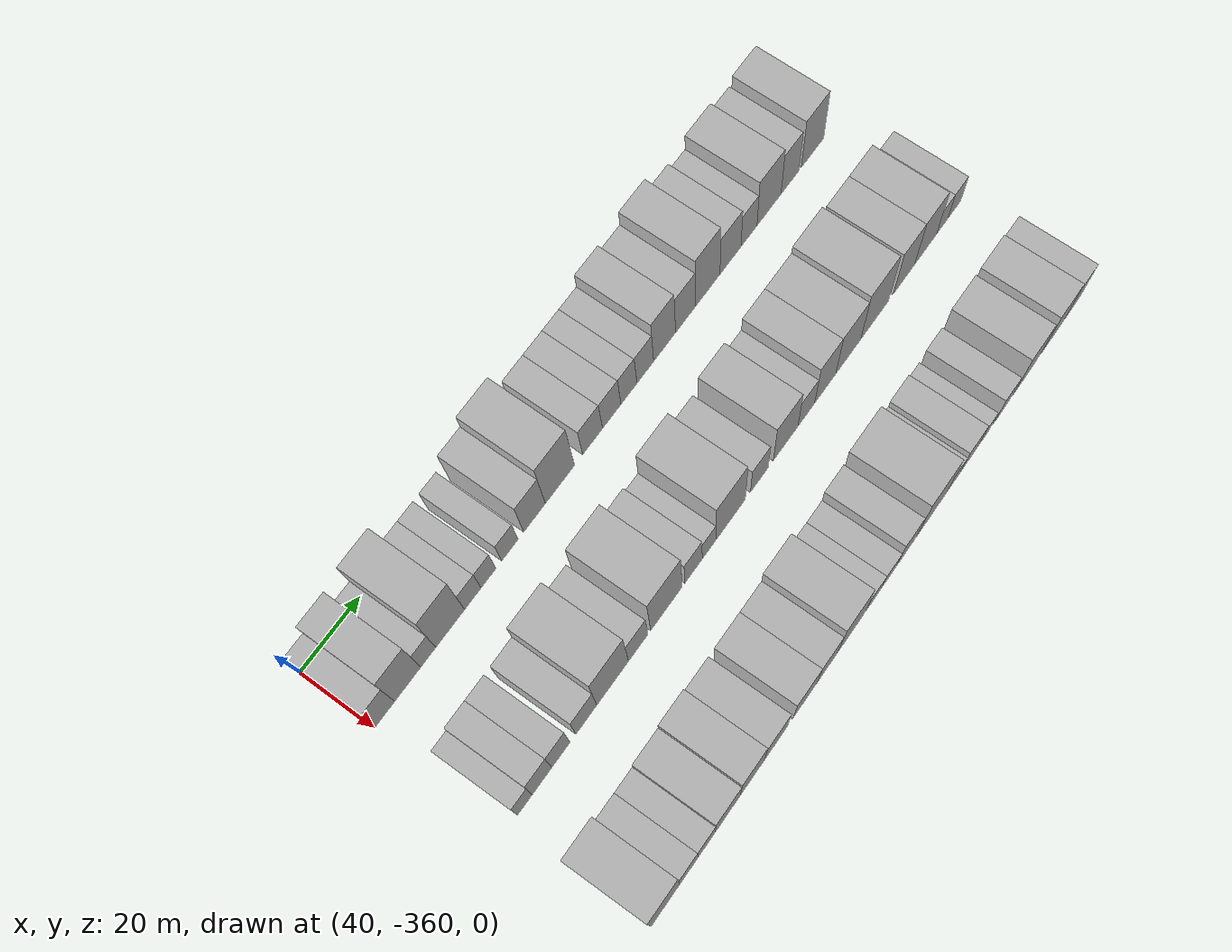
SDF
<sdf version="1.6">
 <world name="default">
  <model name="building_1">
   <static>1</static>
   <pose>50.0000 -356.6200 0 0.000000 0.000000 0.000000</pose>
   <link name="link">
    <pose>0 0 7.50 0 0 0</pose>
    <collision name="collision"><geometry><box><size>20.0000 6.7601 15.0000</size></box></geometry></collision>
    <visual name="visual">
     <cast_shadows>0</cast_shadows>
     <geometry><box><size>20.0000 6.7601 15.0000</size></box></geometry>
     <material>
      <script>
       <uri>model://HANNAS_wall/materials/scripts</uri>
       <uri>model://HANNAS_wall/materials/textures</uri>
       <name>vrc/HANNAS_wall</name>
      </script>
     </material>
    </visual>
   </link>
  </model>
  <model name="building_2">
   <static>1</static>
   <pose>50.0000 -348.8733 0 0.000000 0.000000 0.000000</pose>
   <link name="link">
    <pose>0 0 10.50 0 0 0</pose>
    <collision name="collision"><geometry><box><size>20.0000 8.7333 21.0000</size></box></geometry></collision>
    <visual name="visual">
     <cast_shadows>0</cast_shadows>
     <geometry><box><size>20.0000 8.7333 21.0000</size></box></geometry>
     <material>
      <script>
       <uri>model://HANNAS_wall/materials/scripts</uri>
       <uri>model://HANNAS_wall/materials/textures</uri>
       <name>vrc/HANNAS_wall</name>
      </script>
     </material>
    </visual>
   </link>
  </model>
  <model name="building_3">
   <static>1</static>
   <pose>50.0000 -341.9335 0 0.000000 0.000000 0.000000</pose>
   <link name="link">
    <pose>0 0 6.00 0 0 0</pose>
    <collision name="collision"><geometry><box><size>20.0000 5.1462 12.0000</size></box></geometry></collision>
    <visual name="visual">
     <cast_shadows>0</cast_shadows>
     <geometry><box><size>20.0000 5.1462 12.0000</size></box></geometry>
     <material>
      <script>
       <uri>model://HANNAS_wall/materials/scripts</uri>
       <uri>model://HANNAS_wall/materials/textures</uri>
       <name>vrc/HANNAS_wall</name>
      </script>
     </material>
    </visual>
   </link>
  </model>
  <model name="building_4">
   <static>1</static>
   <pose>50.0000 -334.3905 0 0.000000 0.000000 0.000000</pose>
   <link name="link">
    <pose>0 0 12.00 0 0 0</pose>
    <collision name="collision"><geometry><box><size>20.0000 9.9397 24.0000</size></box></geometry></collision>
    <visual name="visual">
     <cast_shadows>0</cast_shadows>
     <geometry><box><size>20.0000 9.9397 24.0000</size></box></geometry>
     <material>
      <script>
       <uri>model://HANNAS_wall/materials/scripts</uri>
       <uri>model://HANNAS_wall/materials/textures</uri>
       <name>vrc/HANNAS_wall</name>
      </script>
     </material>
    </visual>
   </link>
  </model>
  <model name="building_5">
   <static>1</static>
   <pose>50.0000 -326.5661 0 0.000000 0.000000 0.000000</pose>
   <link name="link">
    <pose>0 0 6.00 0 0 0</pose>
    <collision name="collision"><geometry><box><size>20.0000 5.7091 12.0000</size></box></geometry></collision>
    <visual name="visual">
     <cast_shadows>0</cast_shadows>
     <geometry><box><size>20.0000 5.7091 12.0000</size></box></geometry>
     <material>
      <script>
       <uri>model://HANNAS_wall/materials/scripts</uri>
       <uri>model://HANNAS_wall/materials/textures</uri>
       <name>vrc/HANNAS_wall</name>
      </script>
     </material>
    </visual>
   </link>
  </model>
  <model name="building_6">
   <static>1</static>
   <pose>50.0000 -321.0969 0 0.000000 0.000000 0.000000</pose>
   <link name="link">
    <pose>0 0 6.00 0 0 0</pose>
    <collision name="collision"><geometry><box><size>20.0000 5.2293 12.0000</size></box></geometry></collision>
    <visual name="visual">
     <cast_shadows>0</cast_shadows>
     <geometry><box><size>20.0000 5.2293 12.0000</size></box></geometry>
     <material>
      <script>
       <uri>model://HANNAS_wall/materials/scripts</uri>
       <uri>model://HANNAS_wall/materials/textures</uri>
       <name>vrc/HANNAS_wall</name>
      </script>
     </material>
    </visual>
   </link>
  </model>
  <model name="building_7">
   <static>1</static>
   <pose>50.0000 -313.5679 0 0.000000 0.000000 0.000000</pose>
   <link name="link">
    <pose>0 0 6.00 0 0 0</pose>
    <collision name="collision"><geometry><box><size>20.0000 5.8287 12.0000</size></box></geometry></collision>
    <visual name="visual">
     <cast_shadows>0</cast_shadows>
     <geometry><box><size>20.0000 5.8287 12.0000</size></box></geometry>
     <material>
      <script>
       <uri>model://HANNAS_wall/materials/scripts</uri>
       <uri>model://HANNAS_wall/materials/textures</uri>
       <name>vrc/HANNAS_wall</name>
      </script>
     </material>
    </visual>
   </link>
  </model>
  <model name="building_8">
   <static>1</static>
   <pose>50.0000 -304.7530 0 0.000000 0.000000 0.000000</pose>
   <link name="link">
    <pose>0 0 9.00 0 0 0</pose>
    <collision name="collision"><geometry><box><size>20.0000 7.8011 18.0000</size></box></geometry></collision>
    <visual name="visual">
     <cast_shadows>0</cast_shadows>
     <geometry><box><size>20.0000 7.8011 18.0000</size></box></geometry>
     <material>
      <script>
       <uri>model://HANNAS_wall/materials/scripts</uri>
       <uri>model://HANNAS_wall/materials/textures</uri>
       <name>vrc/HANNAS_wall</name>
      </script>
     </material>
    </visual>
   </link>
  </model>
  <model name="building_9">
   <static>1</static>
   <pose>50.0000 -295.5351 0 0.000000 0.000000 0.000000</pose>
   <link name="link">
    <pose>0 0 12.00 0 0 0</pose>
    <collision name="collision"><geometry><box><size>20.0000 10.6348 24.0000</size></box></geometry></collision>
    <visual name="visual">
     <cast_shadows>0</cast_shadows>
     <geometry><box><size>20.0000 10.6348 24.0000</size></box></geometry>
     <material>
      <script>
       <uri>model://HANNAS_wall/materials/scripts</uri>
       <uri>model://HANNAS_wall/materials/textures</uri>
       <name>vrc/HANNAS_wall</name>
      </script>
     </material>
    </visual>
   </link>
  </model>
  <model name="building_10">
   <static>1</static>
   <pose>50.0000 -283.5239 0 0.000000 0.000000 0.000000</pose>
   <link name="link">
    <pose>0 0 7.50 0 0 0</pose>
    <collision name="collision"><geometry><box><size>20.0000 7.3876 15.0000</size></box></geometry></collision>
    <visual name="visual">
     <cast_shadows>0</cast_shadows>
     <geometry><box><size>20.0000 7.3876 15.0000</size></box></geometry>
     <material>
      <script>
       <uri>model://HANNAS_wall/materials/scripts</uri>
       <uri>model://HANNAS_wall/materials/textures</uri>
       <name>vrc/HANNAS_wall</name>
      </script>
     </material>
    </visual>
   </link>
  </model>
  <model name="building_11">
   <static>1</static>
   <pose>50.0000 -276.3999 0 0.000000 0.000000 0.000000</pose>
   <link name="link">
    <pose>0 0 7.50 0 0 0</pose>
    <collision name="collision"><geometry><box><size>20.0000 6.8602 15.0000</size></box></geometry></collision>
    <visual name="visual">
     <cast_shadows>0</cast_shadows>
     <geometry><box><size>20.0000 6.8602 15.0000</size></box></geometry>
     <material>
      <script>
       <uri>model://HANNAS_wall/materials/scripts</uri>
       <uri>model://HANNAS_wall/materials/textures</uri>
       <name>vrc/HANNAS_wall</name>
      </script>
     </material>
    </visual>
   </link>
  </model>
  <model name="building_12">
   <static>1</static>
   <pose>50.0000 -269.9434 0 0.000000 0.000000 0.000000</pose>
   <link name="link">
    <pose>0 0 7.50 0 0 0</pose>
    <collision name="collision"><geometry><box><size>20.0000 6.0530 15.0000</size></box></geometry></collision>
    <visual name="visual">
     <cast_shadows>0</cast_shadows>
     <geometry><box><size>20.0000 6.0530 15.0000</size></box></geometry>
     <material>
      <script>
       <uri>model://HANNAS_wall/materials/scripts</uri>
       <uri>model://HANNAS_wall/materials/textures</uri>
       <name>vrc/HANNAS_wall</name>
      </script>
     </material>
    </visual>
   </link>
  </model>
  <model name="building_13">
   <static>1</static>
   <pose>50.0000 -263.7187 0 0.000000 0.000000 0.000000</pose>
   <link name="link">
    <pose>0 0 7.50 0 0 0</pose>
    <collision name="collision"><geometry><box><size>20.0000 6.3963 15.0000</size></box></geometry></collision>
    <visual name="visual">
     <cast_shadows>0</cast_shadows>
     <geometry><box><size>20.0000 6.3963 15.0000</size></box></geometry>
     <material>
      <script>
       <uri>model://HANNAS_wall/materials/scripts</uri>
       <uri>model://HANNAS_wall/materials/textures</uri>
       <name>vrc/HANNAS_wall</name>
      </script>
     </material>
    </visual>
   </link>
  </model>
  <model name="building_14">
   <static>1</static>
   <pose>50.0000 -256.2861 0 0.000000 0.000000 0.000000</pose>
   <link name="link">
    <pose>0 0 10.50 0 0 0</pose>
    <collision name="collision"><geometry><box><size>20.0000 8.4690 21.0000</size></box></geometry></collision>
    <visual name="visual">
     <cast_shadows>0</cast_shadows>
     <geometry><box><size>20.0000 8.4690 21.0000</size></box></geometry>
     <material>
      <script>
       <uri>model://HANNAS_wall/materials/scripts</uri>
       <uri>model://HANNAS_wall/materials/textures</uri>
       <name>vrc/HANNAS_wall</name>
      </script>
     </material>
    </visual>
   </link>
  </model>
  <model name="building_15">
   <static>1</static>
   <pose>50.0000 -248.1582 0 0.000000 0.000000 0.000000</pose>
   <link name="link">
    <pose>0 0 9.00 0 0 0</pose>
    <collision name="collision"><geometry><box><size>20.0000 7.7868 18.0000</size></box></geometry></collision>
    <visual name="visual">
     <cast_shadows>0</cast_shadows>
     <geometry><box><size>20.0000 7.7868 18.0000</size></box></geometry>
     <material>
      <script>
       <uri>model://HANNAS_wall/materials/scripts</uri>
       <uri>model://HANNAS_wall/materials/textures</uri>
       <name>vrc/HANNAS_wall</name>
      </script>
     </material>
    </visual>
   </link>
  </model>
  <model name="building_16">
   <static>1</static>
   <pose>50.0000 -239.4405 0 0.000000 0.000000 0.000000</pose>
   <link name="link">
    <pose>0 0 12.00 0 0 0</pose>
    <collision name="collision"><geometry><box><size>20.0000 9.6487 24.0000</size></box></geometry></collision>
    <visual name="visual">
     <cast_shadows>0</cast_shadows>
     <geometry><box><size>20.0000 9.6487 24.0000</size></box></geometry>
     <material>
      <script>
       <uri>model://HANNAS_wall/materials/scripts</uri>
       <uri>model://HANNAS_wall/materials/textures</uri>
       <name>vrc/HANNAS_wall</name>
      </script>
     </material>
    </visual>
   </link>
  </model>
  <model name="building_17">
   <static>1</static>
   <pose>50.0000 -230.4043 0 0.000000 0.000000 0.000000</pose>
   <link name="link">
    <pose>0 0 9.00 0 0 0</pose>
    <collision name="collision"><geometry><box><size>20.0000 8.4235 18.0000</size></box></geometry></collision>
    <visual name="visual">
     <cast_shadows>0</cast_shadows>
     <geometry><box><size>20.0000 8.4235 18.0000</size></box></geometry>
     <material>
      <script>
       <uri>model://HANNAS_wall/materials/scripts</uri>
       <uri>model://HANNAS_wall/materials/textures</uri>
       <name>vrc/HANNAS_wall</name>
      </script>
     </material>
    </visual>
   </link>
  </model>
  <model name="building_18">
   <static>1</static>
   <pose>50.0000 -222.9720 0 0.000000 0.000000 0.000000</pose>
   <link name="link">
    <pose>0 0 7.50 0 0 0</pose>
    <collision name="collision"><geometry><box><size>20.0000 6.4411 15.0000</size></box></geometry></collision>
    <visual name="visual">
     <cast_shadows>0</cast_shadows>
     <geometry><box><size>20.0000 6.4411 15.0000</size></box></geometry>
     <material>
      <script>
       <uri>model://HANNAS_wall/materials/scripts</uri>
       <uri>model://HANNAS_wall/materials/textures</uri>
       <name>vrc/HANNAS_wall</name>
      </script>
     </material>
    </visual>
   </link>
  </model>
  <model name="building_19">
   <static>1</static>
   <pose>50.0000 -214.8241 0 0.000000 0.000000 0.000000</pose>
   <link name="link">
    <pose>0 0 10.50 0 0 0</pose>
    <collision name="collision"><geometry><box><size>20.0000 9.8547 21.0000</size></box></geometry></collision>
    <visual name="visual">
     <cast_shadows>0</cast_shadows>
     <geometry><box><size>20.0000 9.8547 21.0000</size></box></geometry>
     <material>
      <script>
       <uri>model://HANNAS_wall/materials/scripts</uri>
       <uri>model://HANNAS_wall/materials/textures</uri>
       <name>vrc/HANNAS_wall</name>
      </script>
     </material>
    </visual>
   </link>
  </model>
  <model name="building_20">
   <static>1</static>
   <pose>50.0000 -206.2114 0 0.000000 0.000000 0.000000</pose>
   <link name="link">
    <pose>0 0 9.00 0 0 0</pose>
    <collision name="collision"><geometry><box><size>20.0000 7.3707 18.0000</size></box></geometry></collision>
    <visual name="visual">
     <cast_shadows>0</cast_shadows>
     <geometry><box><size>20.0000 7.3707 18.0000</size></box></geometry>
     <material>
      <script>
       <uri>model://HANNAS_wall/materials/scripts</uri>
       <uri>model://HANNAS_wall/materials/textures</uri>
       <name>vrc/HANNAS_wall</name>
      </script>
     </material>
    </visual>
   </link>
  </model>
  <model name="building_21">
   <static>1</static>
   <pose>50.0000 -196.8232 0 0.000000 0.000000 0.000000</pose>
   <link name="link">
    <pose>0 0 10.50 0 0 0</pose>
    <collision name="collision"><geometry><box><size>20.0000 9.4058 21.0000</size></box></geometry></collision>
    <visual name="visual">
     <cast_shadows>0</cast_shadows>
     <geometry><box><size>20.0000 9.4058 21.0000</size></box></geometry>
     <material>
      <script>
       <uri>model://HANNAS_wall/materials/scripts</uri>
       <uri>model://HANNAS_wall/materials/textures</uri>
       <name>vrc/HANNAS_wall</name>
      </script>
     </material>
    </visual>
   </link>
  </model>
  <model name="building_84">
   <static>1</static>
   <pose>85.0000 -354.4987 0 0.000000 0.000000 0.000000</pose>
   <link name="link">
    <pose>0 0 6.00 0 0 0</pose>
    <collision name="collision"><geometry><box><size>20.0000 5.0026 12.0000</size></box></geometry></collision>
    <visual name="visual">
     <cast_shadows>0</cast_shadows>
     <geometry><box><size>20.0000 5.0026 12.0000</size></box></geometry>
     <material>
      <script>
       <uri>model://HANNAS_wall/materials/scripts</uri>
       <uri>model://HANNAS_wall/materials/textures</uri>
       <name>vrc/HANNAS_wall</name>
      </script>
     </material>
    </visual>
   </link>
  </model>
  <model name="building_85">
   <static>1</static>
   <pose>85.0000 -348.6462 0 0.000000 0.000000 0.000000</pose>
   <link name="link">
    <pose>0 0 7.50 0 0 0</pose>
    <collision name="collision"><geometry><box><size>20.0000 6.7025 15.0000</size></box></geometry></collision>
    <visual name="visual">
     <cast_shadows>0</cast_shadows>
     <geometry><box><size>20.0000 6.7025 15.0000</size></box></geometry>
     <material>
      <script>
       <uri>model://HANNAS_wall/materials/scripts</uri>
       <uri>model://HANNAS_wall/materials/textures</uri>
       <name>vrc/HANNAS_wall</name>
      </script>
     </material>
    </visual>
   </link>
  </model>
  <model name="building_86">
   <static>1</static>
   <pose>85.0000 -342.1500 0 0.000000 0.000000 0.000000</pose>
   <link name="link">
    <pose>0 0 7.50 0 0 0</pose>
    <collision name="collision"><geometry><box><size>20.0000 6.2898 15.0000</size></box></geometry></collision>
    <visual name="visual">
     <cast_shadows>0</cast_shadows>
     <geometry><box><size>20.0000 6.2898 15.0000</size></box></geometry>
     <material>
      <script>
       <uri>model://HANNAS_wall/materials/scripts</uri>
       <uri>model://HANNAS_wall/materials/textures</uri>
       <name>vrc/HANNAS_wall</name>
      </script>
     </material>
    </visual>
   </link>
  </model>
  <model name="building_87">
   <static>1</static>
   <pose>85.0000 -333.3445 0 0.000000 0.000000 0.000000</pose>
   <link name="link">
    <pose>0 0 7.50 0 0 0</pose>
    <collision name="collision"><geometry><box><size>20.0000 7.3213 15.0000</size></box></geometry></collision>
    <visual name="visual">
     <cast_shadows>0</cast_shadows>
     <geometry><box><size>20.0000 7.3213 15.0000</size></box></geometry>
     <material>
      <script>
       <uri>model://HANNAS_wall/materials/scripts</uri>
       <uri>model://HANNAS_wall/materials/textures</uri>
       <name>vrc/HANNAS_wall</name>
      </script>
     </material>
    </visual>
   </link>
  </model>
  <model name="building_88">
   <static>1</static>
   <pose>85.0000 -324.0532 0 0.000000 0.000000 0.000000</pose>
   <link name="link">
    <pose>0 0 12.00 0 0 0</pose>
    <collision name="collision"><geometry><box><size>20.0000 11.2613 24.0000</size></box></geometry></collision>
    <visual name="visual">
     <cast_shadows>0</cast_shadows>
     <geometry><box><size>20.0000 11.2613 24.0000</size></box></geometry>
     <material>
      <script>
       <uri>model://HANNAS_wall/materials/scripts</uri>
       <uri>model://HANNAS_wall/materials/textures</uri>
       <name>vrc/HANNAS_wall</name>
      </script>
     </material>
    </visual>
   </link>
  </model>
  <model name="building_89">
   <static>1</static>
   <pose>85.0000 -314.9247 0 0.000000 0.000000 0.000000</pose>
   <link name="link">
    <pose>0 0 7.50 0 0 0</pose>
    <collision name="collision"><geometry><box><size>20.0000 6.9957 15.0000</size></box></geometry></collision>
    <visual name="visual">
     <cast_shadows>0</cast_shadows>
     <geometry><box><size>20.0000 6.9957 15.0000</size></box></geometry>
     <material>
      <script>
       <uri>model://HANNAS_wall/materials/scripts</uri>
       <uri>model://HANNAS_wall/materials/textures</uri>
       <name>vrc/HANNAS_wall</name>
      </script>
     </material>
    </visual>
   </link>
  </model>
  <model name="building_90">
   <static>1</static>
   <pose>85.0000 -304.6730 0 0.000000 0.000000 0.000000</pose>
   <link name="link">
    <pose>0 0 12.00 0 0 0</pose>
    <collision name="collision"><geometry><box><size>20.0000 11.5077 24.0000</size></box></geometry></collision>
    <visual name="visual">
     <cast_shadows>0</cast_shadows>
     <geometry><box><size>20.0000 11.5077 24.0000</size></box></geometry>
     <material>
      <script>
       <uri>model://HANNAS_wall/materials/scripts</uri>
       <uri>model://HANNAS_wall/materials/textures</uri>
       <name>vrc/HANNAS_wall</name>
      </script>
     </material>
    </visual>
   </link>
  </model>
  <model name="building_91">
   <static>1</static>
   <pose>85.0000 -294.7098 0 0.000000 0.000000 0.000000</pose>
   <link name="link">
    <pose>0 0 7.50 0 0 0</pose>
    <collision name="collision"><geometry><box><size>20.0000 6.4189 15.0000</size></box></geometry></collision>
    <visual name="visual">
     <cast_shadows>0</cast_shadows>
     <geometry><box><size>20.0000 6.4189 15.0000</size></box></geometry>
     <material>
      <script>
       <uri>model://HANNAS_wall/materials/scripts</uri>
       <uri>model://HANNAS_wall/materials/textures</uri>
       <name>vrc/HANNAS_wall</name>
      </script>
     </material>
    </visual>
   </link>
  </model>
  <model name="building_92">
   <static>1</static>
   <pose>85.0000 -288.9550 0 0.000000 0.000000 0.000000</pose>
   <link name="link">
    <pose>0 0 6.00 0 0 0</pose>
    <collision name="collision"><geometry><box><size>20.0000 5.0906 12.0000</size></box></geometry></collision>
    <visual name="visual">
     <cast_shadows>0</cast_shadows>
     <geometry><box><size>20.0000 5.0906 12.0000</size></box></geometry>
     <material>
      <script>
       <uri>model://HANNAS_wall/materials/scripts</uri>
       <uri>model://HANNAS_wall/materials/textures</uri>
       <name>vrc/HANNAS_wall</name>
      </script>
     </material>
    </visual>
   </link>
  </model>
  <model name="building_93">
   <static>1</static>
   <pose>85.0000 -280.8157 0 0.000000 0.000000 0.000000</pose>
   <link name="link">
    <pose>0 0 12.00 0 0 0</pose>
    <collision name="collision"><geometry><box><size>20.0000 11.1880 24.0000</size></box></geometry></collision>
    <visual name="visual">
     <cast_shadows>0</cast_shadows>
     <geometry><box><size>20.0000 11.1880 24.0000</size></box></geometry>
     <material>
      <script>
       <uri>model://HANNAS_wall/materials/scripts</uri>
       <uri>model://HANNAS_wall/materials/textures</uri>
       <name>vrc/HANNAS_wall</name>
      </script>
     </material>
    </visual>
   </link>
  </model>
  <model name="building_94">
   <static>1</static>
   <pose>85.0000 -269.8237 0 0.000000 0.000000 0.000000</pose>
   <link name="link">
    <pose>0 0 7.50 0 0 0</pose>
    <collision name="collision"><geometry><box><size>20.0000 6.7960 15.0000</size></box></geometry></collision>
    <visual name="visual">
     <cast_shadows>0</cast_shadows>
     <geometry><box><size>20.0000 6.7960 15.0000</size></box></geometry>
     <material>
      <script>
       <uri>model://HANNAS_wall/materials/scripts</uri>
       <uri>model://HANNAS_wall/materials/textures</uri>
       <name>vrc/HANNAS_wall</name>
      </script>
     </material>
    </visual>
   </link>
  </model>
  <model name="building_95">
   <static>1</static>
   <pose>85.0000 -259.6297 0 0.000000 0.000000 0.000000</pose>
   <link name="link">
    <pose>0 0 10.50 0 0 0</pose>
    <collision name="collision"><geometry><box><size>20.0000 9.5920 21.0000</size></box></geometry></collision>
    <visual name="visual">
     <cast_shadows>0</cast_shadows>
     <geometry><box><size>20.0000 9.5920 21.0000</size></box></geometry>
     <material>
      <script>
       <uri>model://HANNAS_wall/materials/scripts</uri>
       <uri>model://HANNAS_wall/materials/textures</uri>
       <name>vrc/HANNAS_wall</name>
      </script>
     </material>
    </visual>
   </link>
  </model>
  <model name="building_96">
   <static>1</static>
   <pose>85.0000 -251.5391 0 0.000000 0.000000 0.000000</pose>
   <link name="link">
    <pose>0 0 7.50 0 0 0</pose>
    <collision name="collision"><geometry><box><size>20.0000 6.5892 15.0000</size></box></geometry></collision>
    <visual name="visual">
     <cast_shadows>0</cast_shadows>
     <geometry><box><size>20.0000 6.5892 15.0000</size></box></geometry>
     <material>
      <script>
       <uri>model://HANNAS_wall/materials/scripts</uri>
       <uri>model://HANNAS_wall/materials/textures</uri>
       <name>vrc/HANNAS_wall</name>
      </script>
     </material>
    </visual>
   </link>
  </model>
  <model name="building_97">
   <static>1</static>
   <pose>85.0000 -243.9914 0 0.000000 0.000000 0.000000</pose>
   <link name="link">
    <pose>0 0 10.50 0 0 0</pose>
    <collision name="collision"><geometry><box><size>20.0000 8.5064 21.0000</size></box></geometry></collision>
    <visual name="visual">
     <cast_shadows>0</cast_shadows>
     <geometry><box><size>20.0000 8.5064 21.0000</size></box></geometry>
     <material>
      <script>
       <uri>model://HANNAS_wall/materials/scripts</uri>
       <uri>model://HANNAS_wall/materials/textures</uri>
       <name>vrc/HANNAS_wall</name>
      </script>
     </material>
    </visual>
   </link>
  </model>
  <model name="building_98">
   <static>1</static>
   <pose>85.0000 -234.6717 0 0.000000 0.000000 0.000000</pose>
   <link name="link">
    <pose>0 0 10.50 0 0 0</pose>
    <collision name="collision"><geometry><box><size>20.0000 10.1329 21.0000</size></box></geometry></collision>
    <visual name="visual">
     <cast_shadows>0</cast_shadows>
     <geometry><box><size>20.0000 10.1329 21.0000</size></box></geometry>
     <material>
      <script>
       <uri>model://HANNAS_wall/materials/scripts</uri>
       <uri>model://HANNAS_wall/materials/textures</uri>
       <name>vrc/HANNAS_wall</name>
      </script>
     </material>
    </visual>
   </link>
  </model>
  <model name="building_99">
   <static>1</static>
   <pose>85.0000 -223.8910 0 0.000000 0.000000 0.000000</pose>
   <link name="link">
    <pose>0 0 12.00 0 0 0</pose>
    <collision name="collision"><geometry><box><size>20.0000 11.4286 24.0000</size></box></geometry></collision>
    <visual name="visual">
     <cast_shadows>0</cast_shadows>
     <geometry><box><size>20.0000 11.4286 24.0000</size></box></geometry>
     <material>
      <script>
       <uri>model://HANNAS_wall/materials/scripts</uri>
       <uri>model://HANNAS_wall/materials/textures</uri>
       <name>vrc/HANNAS_wall</name>
      </script>
     </material>
    </visual>
   </link>
  </model>
  <model name="building_100">
   <static>1</static>
   <pose>85.0000 -211.7104 0 0.000000 0.000000 0.000000</pose>
   <link name="link">
    <pose>0 0 10.50 0 0 0</pose>
    <collision name="collision"><geometry><box><size>20.0000 8.9328 21.0000</size></box></geometry></collision>
    <visual name="visual">
     <cast_shadows>0</cast_shadows>
     <geometry><box><size>20.0000 8.9328 21.0000</size></box></geometry>
     <material>
      <script>
       <uri>model://HANNAS_wall/materials/scripts</uri>
       <uri>model://HANNAS_wall/materials/textures</uri>
       <name>vrc/HANNAS_wall</name>
      </script>
     </material>
    </visual>
   </link>
  </model>
  <model name="building_101">
   <static>1</static>
   <pose>85.0000 -202.6035 0 0.000000 0.000000 0.000000</pose>
   <link name="link">
    <pose>0 0 10.50 0 0 0</pose>
    <collision name="collision"><geometry><box><size>20.0000 9.2810 21.0000</size></box></geometry></collision>
    <visual name="visual">
     <cast_shadows>0</cast_shadows>
     <geometry><box><size>20.0000 9.2810 21.0000</size></box></geometry>
     <material>
      <script>
       <uri>model://HANNAS_wall/materials/scripts</uri>
       <uri>model://HANNAS_wall/materials/textures</uri>
       <name>vrc/HANNAS_wall</name>
      </script>
     </material>
    </visual>
   </link>
  </model>
  <model name="building_102">
   <static>1</static>
   <pose>85.0000 -195.4923 0 0.000000 0.000000 0.000000</pose>
   <link name="link">
    <pose>0 0 6.00 0 0 0</pose>
    <collision name="collision"><geometry><box><size>20.0000 4.9413 12.0000</size></box></geometry></collision>
    <visual name="visual">
     <cast_shadows>0</cast_shadows>
     <geometry><box><size>20.0000 4.9413 12.0000</size></box></geometry>
     <material>
      <script>
       <uri>model://HANNAS_wall/materials/scripts</uri>
       <uri>model://HANNAS_wall/materials/textures</uri>
       <name>vrc/HANNAS_wall</name>
      </script>
     </material>
    </visual>
   </link>
  </model>
  <model name="building_103">
   <static>1</static>
   <pose>85.0000 -190.2373 0 0.000000 0.000000 0.000000</pose>
   <link name="link">
    <pose>0 0 6.00 0 0 0</pose>
    <collision name="collision"><geometry><box><size>20.0000 5.5689 12.0000</size></box></geometry></collision>
    <visual name="visual">
     <cast_shadows>0</cast_shadows>
     <geometry><box><size>20.0000 5.5689 12.0000</size></box></geometry>
     <material>
      <script>
       <uri>model://HANNAS_wall/materials/scripts</uri>
       <uri>model://HANNAS_wall/materials/textures</uri>
       <name>vrc/HANNAS_wall</name>
      </script>
     </material>
    </visual>
   </link>
  </model>
  <model name="building_167">
   <static>1</static>
   <pose>120.0000 -354.0619 0 0.000000 0.000000 0.000000</pose>
   <link name="link">
    <pose>0 0 12.00 0 0 0</pose>
    <collision name="collision"><geometry><box><size>20.0000 9.8761 24.0000</size></box></geometry></collision>
    <visual name="visual">
     <cast_shadows>0</cast_shadows>
     <geometry><box><size>20.0000 9.8761 24.0000</size></box></geometry>
     <material>
      <script>
       <uri>model://HANNAS_wall/materials/scripts</uri>
       <uri>model://HANNAS_wall/materials/textures</uri>
       <name>vrc/HANNAS_wall</name>
      </script>
     </material>
    </visual>
   </link>
  </model>
  <model name="building_168">
   <static>1</static>
   <pose>120.0000 -345.9359 0 0.000000 0.000000 0.000000</pose>
   <link name="link">
    <pose>0 0 7.50 0 0 0</pose>
    <collision name="collision"><geometry><box><size>20.0000 6.3758 15.0000</size></box></geometry></collision>
    <visual name="visual">
     <cast_shadows>0</cast_shadows>
     <geometry><box><size>20.0000 6.3758 15.0000</size></box></geometry>
     <material>
      <script>
       <uri>model://HANNAS_wall/materials/scripts</uri>
       <uri>model://HANNAS_wall/materials/textures</uri>
       <name>vrc/HANNAS_wall</name>
      </script>
     </material>
    </visual>
   </link>
  </model>
  <model name="building_169">
   <static>1</static>
   <pose>120.0000 -339.6994 0 0.000000 0.000000 0.000000</pose>
   <link name="link">
    <pose>0 0 7.50 0 0 0</pose>
    <collision name="collision"><geometry><box><size>20.0000 6.0972 15.0000</size></box></geometry></collision>
    <visual name="visual">
     <cast_shadows>0</cast_shadows>
     <geometry><box><size>20.0000 6.0972 15.0000</size></box></geometry>
     <material>
      <script>
       <uri>model://HANNAS_wall/materials/scripts</uri>
       <uri>model://HANNAS_wall/materials/textures</uri>
       <name>vrc/HANNAS_wall</name>
      </script>
     </material>
    </visual>
   </link>
  </model>
  <model name="building_170">
   <static>1</static>
   <pose>120.0000 -332.2151 0 0.000000 0.000000 0.000000</pose>
   <link name="link">
    <pose>0 0 9.00 0 0 0</pose>
    <collision name="collision"><geometry><box><size>20.0000 8.8714 18.0000</size></box></geometry></collision>
    <visual name="visual">
     <cast_shadows>0</cast_shadows>
     <geometry><box><size>20.0000 8.8714 18.0000</size></box></geometry>
     <material>
      <script>
       <uri>model://HANNAS_wall/materials/scripts</uri>
       <uri>model://HANNAS_wall/materials/textures</uri>
       <name>vrc/HANNAS_wall</name>
      </script>
     </material>
    </visual>
   </link>
  </model>
  <model name="building_171">
   <static>1</static>
   <pose>120.0000 -323.4273 0 0.000000 0.000000 0.000000</pose>
   <link name="link">
    <pose>0 0 10.50 0 0 0</pose>
    <collision name="collision"><geometry><box><size>20.0000 8.7043 21.0000</size></box></geometry></collision>
    <visual name="visual">
     <cast_shadows>0</cast_shadows>
     <geometry><box><size>20.0000 8.7043 21.0000</size></box></geometry>
     <material>
      <script>
       <uri>model://HANNAS_wall/materials/scripts</uri>
       <uri>model://HANNAS_wall/materials/textures</uri>
       <name>vrc/HANNAS_wall</name>
      </script>
     </material>
    </visual>
   </link>
  </model>
  <model name="building_172">
   <static>1</static>
   <pose>120.0000 -314.8347 0 0.000000 0.000000 0.000000</pose>
   <link name="link">
    <pose>0 0 9.00 0 0 0</pose>
    <collision name="collision"><geometry><box><size>20.0000 8.4809 18.0000</size></box></geometry></collision>
    <visual name="visual">
     <cast_shadows>0</cast_shadows>
     <geometry><box><size>20.0000 8.4809 18.0000</size></box></geometry>
     <material>
      <script>
       <uri>model://HANNAS_wall/materials/scripts</uri>
       <uri>model://HANNAS_wall/materials/textures</uri>
       <name>vrc/HANNAS_wall</name>
      </script>
     </material>
    </visual>
   </link>
  </model>
  <model name="building_173">
   <static>1</static>
   <pose>120.0000 -304.1085 0 0.000000 0.000000 0.000000</pose>
   <link name="link">
    <pose>0 0 9.00 0 0 0</pose>
    <collision name="collision"><geometry><box><size>20.0000 8.9717 18.0000</size></box></geometry></collision>
    <visual name="visual">
     <cast_shadows>0</cast_shadows>
     <geometry><box><size>20.0000 8.9717 18.0000</size></box></geometry>
     <material>
      <script>
       <uri>model://HANNAS_wall/materials/scripts</uri>
       <uri>model://HANNAS_wall/materials/textures</uri>
       <name>vrc/HANNAS_wall</name>
      </script>
     </material>
    </visual>
   </link>
  </model>
  <model name="building_174">
   <static>1</static>
   <pose>120.0000 -295.7349 0 0.000000 0.000000 0.000000</pose>
   <link name="link">
    <pose>0 0 9.00 0 0 0</pose>
    <collision name="collision"><geometry><box><size>20.0000 7.7754 18.0000</size></box></geometry></collision>
    <visual name="visual">
     <cast_shadows>0</cast_shadows>
     <geometry><box><size>20.0000 7.7754 18.0000</size></box></geometry>
     <material>
      <script>
       <uri>model://HANNAS_wall/materials/scripts</uri>
       <uri>model://HANNAS_wall/materials/textures</uri>
       <name>vrc/HANNAS_wall</name>
      </script>
     </material>
    </visual>
   </link>
  </model>
  <model name="building_175">
   <static>1</static>
   <pose>120.0000 -286.7789 0 0.000000 0.000000 0.000000</pose>
   <link name="link">
    <pose>0 0 12.00 0 0 0</pose>
    <collision name="collision"><geometry><box><size>20.0000 10.1365 24.0000</size></box></geometry></collision>
    <visual name="visual">
     <cast_shadows>0</cast_shadows>
     <geometry><box><size>20.0000 10.1365 24.0000</size></box></geometry>
     <material>
      <script>
       <uri>model://HANNAS_wall/materials/scripts</uri>
       <uri>model://HANNAS_wall/materials/textures</uri>
       <name>vrc/HANNAS_wall</name>
      </script>
     </material>
    </visual>
   </link>
  </model>
  <model name="building_176">
   <static>1</static>
   <pose>120.0000 -277.8262 0 0.000000 0.000000 0.000000</pose>
   <link name="link">
    <pose>0 0 6.00 0 0 0</pose>
    <collision name="collision"><geometry><box><size>20.0000 5.7690 12.0000</size></box></geometry></collision>
    <visual name="visual">
     <cast_shadows>0</cast_shadows>
     <geometry><box><size>20.0000 5.7690 12.0000</size></box></geometry>
     <material>
      <script>
       <uri>model://HANNAS_wall/materials/scripts</uri>
       <uri>model://HANNAS_wall/materials/textures</uri>
       <name>vrc/HANNAS_wall</name>
      </script>
     </material>
    </visual>
   </link>
  </model>
  <model name="building_177">
   <static>1</static>
   <pose>120.0000 -272.0088 0 0.000000 0.000000 0.000000</pose>
   <link name="link">
    <pose>0 0 6.00 0 0 0</pose>
    <collision name="collision"><geometry><box><size>20.0000 5.8657 12.0000</size></box></geometry></collision>
    <visual name="visual">
     <cast_shadows>0</cast_shadows>
     <geometry><box><size>20.0000 5.8657 12.0000</size></box></geometry>
     <material>
      <script>
       <uri>model://HANNAS_wall/materials/scripts</uri>
       <uri>model://HANNAS_wall/materials/textures</uri>
       <name>vrc/HANNAS_wall</name>
      </script>
     </material>
    </visual>
   </link>
  </model>
  <model name="building_178">
   <static>1</static>
   <pose>120.0000 -265.4447 0 0.000000 0.000000 0.000000</pose>
   <link name="link">
    <pose>0 0 9.00 0 0 0</pose>
    <collision name="collision"><geometry><box><size>20.0000 7.2626 18.0000</size></box></geometry></collision>
    <visual name="visual">
     <cast_shadows>0</cast_shadows>
     <geometry><box><size>20.0000 7.2626 18.0000</size></box></geometry>
     <material>
      <script>
       <uri>model://HANNAS_wall/materials/scripts</uri>
       <uri>model://HANNAS_wall/materials/textures</uri>
       <name>vrc/HANNAS_wall</name>
      </script>
     </material>
    </visual>
   </link>
  </model>
  <model name="building_179">
   <static>1</static>
   <pose>120.0000 -254.8217 0 0.000000 0.000000 0.000000</pose>
   <link name="link">
    <pose>0 0 12.00 0 0 0</pose>
    <collision name="collision"><geometry><box><size>20.0000 11.9833 24.0000</size></box></geometry></collision>
    <visual name="visual">
     <cast_shadows>0</cast_shadows>
     <geometry><box><size>20.0000 11.9833 24.0000</size></box></geometry>
     <material>
      <script>
       <uri>model://HANNAS_wall/materials/scripts</uri>
       <uri>model://HANNAS_wall/materials/textures</uri>
       <name>vrc/HANNAS_wall</name>
      </script>
     </material>
    </visual>
   </link>
  </model>
  <model name="building_180">
   <static>1</static>
   <pose>120.0000 -246.2415 0 0.000000 0.000000 0.000000</pose>
   <link name="link">
    <pose>0 0 6.00 0 0 0</pose>
    <collision name="collision"><geometry><box><size>20.0000 5.1772 12.0000</size></box></geometry></collision>
    <visual name="visual">
     <cast_shadows>0</cast_shadows>
     <geometry><box><size>20.0000 5.1772 12.0000</size></box></geometry>
     <material>
      <script>
       <uri>model://HANNAS_wall/materials/scripts</uri>
       <uri>model://HANNAS_wall/materials/textures</uri>
       <name>vrc/HANNAS_wall</name>
      </script>
     </material>
    </visual>
   </link>
  </model>
  <model name="building_181">
   <static>1</static>
   <pose>120.0000 -239.9373 0 0.000000 0.000000 0.000000</pose>
   <link name="link">
    <pose>0 0 7.50 0 0 0</pose>
    <collision name="collision"><geometry><box><size>20.0000 7.4311 15.0000</size></box></geometry></collision>
    <visual name="visual">
     <cast_shadows>0</cast_shadows>
     <geometry><box><size>20.0000 7.4311 15.0000</size></box></geometry>
     <material>
      <script>
       <uri>model://HANNAS_wall/materials/scripts</uri>
       <uri>model://HANNAS_wall/materials/textures</uri>
       <name>vrc/HANNAS_wall</name>
      </script>
     </material>
    </visual>
   </link>
  </model>
  <model name="building_182">
   <static>1</static>
   <pose>120.0000 -233.8181 0 0.000000 0.000000 0.000000</pose>
   <link name="link">
    <pose>0 0 6.00 0 0 0</pose>
    <collision name="collision"><geometry><box><size>20.0000 4.8075 12.0000</size></box></geometry></collision>
    <visual name="visual">
     <cast_shadows>0</cast_shadows>
     <geometry><box><size>20.0000 4.8075 12.0000</size></box></geometry>
     <material>
      <script>
       <uri>model://HANNAS_wall/materials/scripts</uri>
       <uri>model://HANNAS_wall/materials/textures</uri>
       <name>vrc/HANNAS_wall</name>
      </script>
     </material>
    </visual>
   </link>
  </model>
  <model name="building_183">
   <static>1</static>
   <pose>120.0000 -226.2014 0 0.000000 0.000000 0.000000</pose>
   <link name="link">
    <pose>0 0 7.50 0 0 0</pose>
    <collision name="collision"><geometry><box><size>20.0000 6.4259 15.0000</size></box></geometry></collision>
    <visual name="visual">
     <cast_shadows>0</cast_shadows>
     <geometry><box><size>20.0000 6.4259 15.0000</size></box></geometry>
     <material>
      <script>
       <uri>model://HANNAS_wall/materials/scripts</uri>
       <uri>model://HANNAS_wall/materials/textures</uri>
       <name>vrc/HANNAS_wall</name>
      </script>
     </material>
    </visual>
   </link>
  </model>
  <model name="building_184">
   <static>1</static>
   <pose>120.0000 -216.1505 0 0.000000 0.000000 0.000000</pose>
   <link name="link">
    <pose>0 0 10.50 0 0 0</pose>
    <collision name="collision"><geometry><box><size>20.0000 9.6758 21.0000</size></box></geometry></collision>
    <visual name="visual">
     <cast_shadows>0</cast_shadows>
     <geometry><box><size>20.0000 9.6758 21.0000</size></box></geometry>
     <material>
      <script>
       <uri>model://HANNAS_wall/materials/scripts</uri>
       <uri>model://HANNAS_wall/materials/textures</uri>
       <name>vrc/HANNAS_wall</name>
      </script>
     </material>
    </visual>
   </link>
  </model>
  <model name="building_185">
   <static>1</static>
   <pose>120.0000 -204.5542 0 0.000000 0.000000 0.000000</pose>
   <link name="link">
    <pose>0 0 10.50 0 0 0</pose>
    <collision name="collision"><geometry><box><size>20.0000 9.5169 21.0000</size></box></geometry></collision>
    <visual name="visual">
     <cast_shadows>0</cast_shadows>
     <geometry><box><size>20.0000 9.5169 21.0000</size></box></geometry>
     <material>
      <script>
       <uri>model://HANNAS_wall/materials/scripts</uri>
       <uri>model://HANNAS_wall/materials/textures</uri>
       <name>vrc/HANNAS_wall</name>
      </script>
     </material>
    </visual>
   </link>
  </model>
  <model name="building_186">
   <static>1</static>
   <pose>120.0000 -196.1786 0 0.000000 0.000000 0.000000</pose>
   <link name="link">
    <pose>0 0 9.00 0 0 0</pose>
    <collision name="collision"><geometry><box><size>20.0000 7.2342 18.0000</size></box></geometry></collision>
    <visual name="visual">
     <cast_shadows>0</cast_shadows>
     <geometry><box><size>20.0000 7.2342 18.0000</size></box></geometry>
     <material>
      <script>
       <uri>model://HANNAS_wall/materials/scripts</uri>
       <uri>model://HANNAS_wall/materials/textures</uri>
       <name>vrc/HANNAS_wall</name>
      </script>
     </material>
    </visual>
   </link>
  </model>
 </world>
</sdf>
